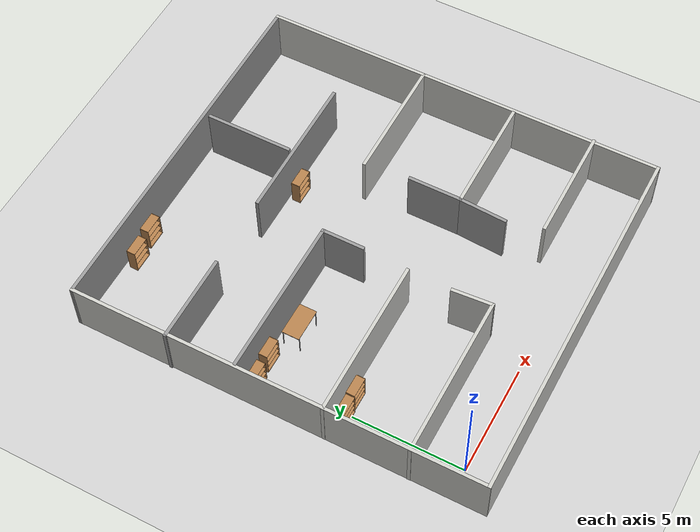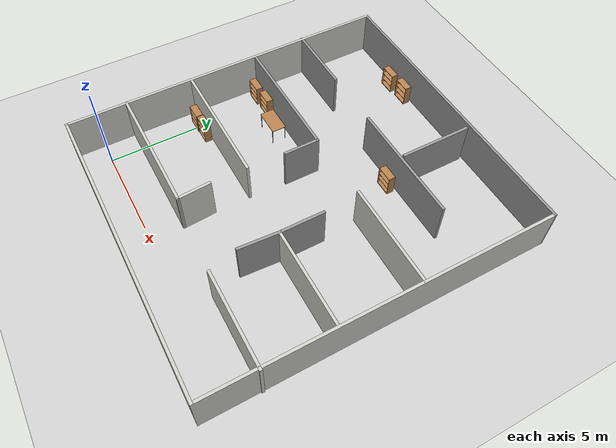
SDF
<sdf version="1.7">
 <world name="default">
  <model name="ground_plane">
   <static>1</static>
   <link name="link">
    <collision name="collision">
     <geometry><plane><normal>0 0 1</normal><size>100 100</size></plane></geometry>
     <surface><friction><ode><mu>100</mu><mu2>50</mu2></ode></friction></surface>
    </collision>
    <visual name="visual">
     <cast_shadows>0</cast_shadows>
     <geometry><plane><normal>0 0 1</normal><size>100 100</size></plane></geometry>
     <material>
      <script><uri>file://media/materials/scripts/gazebo.material</uri><name>Gazebo/Grey</name></script>
     </material>
    </visual>
   </link>
  </model>
  <model name="ee_1">
   <pose>7.01305 7.77711 0 0 -0 0</pose>
   <link name="Wall_0">
    <collision name="Wall_0_Collision">
     <geometry><box><size>16.7607 0.15 2.5</size></box></geometry>
     <pose>0 0 1.25 0 -0 0</pose>
    </collision>
    <visual name="Wall_0_Visual">
     <pose>0 0 1.25 0 -0 0</pose>
     <geometry><box><size>16.7607 0.15 2.5</size></box></geometry>
     <material>
      <script><uri>file://media/materials/scripts/gazebo.material</uri><name>Gazebo/CeilingTiled</name></script>
      <ambient>0.921569 0.807843 0.615686 1</ambient>
     </material>
     <meta><layer>0</layer></meta>
    </visual>
    <pose>0.010352 -9.2685 0 0 -0 0</pose>
   </link>
   <link name="Wall_1">
    <collision name="Wall_1_Collision">
     <geometry><box><size>18.687 0.15 2.5</size></box></geometry>
     <pose>0 0 1.25 0 -0 0</pose>
    </collision>
    <visual name="Wall_1_Visual">
     <pose>0 0 1.25 0 -0 0</pose>
     <geometry><box><size>18.687 0.15 2.5</size></box></geometry>
     <material>
      <script><uri>file://media/materials/scripts/gazebo.material</uri><name>Gazebo/CeilingTiled</name></script>
      <ambient>0.921569 0.807843 0.615686 1</ambient>
     </material>
     <meta><layer>0</layer></meta>
    </visual>
    <pose>8.29685 0 0 0 -0 1.57285</pose>
   </link>
   <link name="Wall_2">
    <collision name="Wall_2_Collision">
     <geometry><box><size>16.761 0.15 2.5</size></box></geometry>
     <pose>0 0 1.25 0 -0 0</pose>
    </collision>
    <visual name="Wall_2_Visual">
     <pose>0 0 1.25 0 -0 0</pose>
     <geometry><box><size>16.761 0.15 2.5</size></box></geometry>
     <material>
      <script><uri>file://media/materials/scripts/gazebo.material</uri><name>Gazebo/Grey</name></script>
      <ambient>1 1 1 1</ambient>
     </material>
     <meta><layer>0</layer></meta>
    </visual>
    <pose>-0.027648 9.2685 0 0 -0 3.14159</pose>
   </link>
   <link name="Wall_21">
    <collision name="Wall_21_Collision">
     <geometry><box><size>7.373 0.15 2.5</size></box></geometry>
     <pose>0 0 1.25 0 -0 0</pose>
    </collision>
    <visual name="Wall_21_Visual">
     <pose>0 0 1.25 0 -0 0</pose>
     <geometry><box><size>7.373 0.15 2.5</size></box></geometry>
     <material>
      <script><uri>file://media/materials/scripts/gazebo.material</uri><name>Gazebo/CeilingTiled</name></script>
      <ambient>0.921569 0.807843 0.615686 1</ambient>
     </material>
     <meta><layer>0</layer></meta>
    </visual>
    <pose>-4.70665 -5.9765 0 0 -0 0</pose>
   </link>
   <link name="Wall_22">
    <collision name="Wall_22_Collision">
     <geometry><box><size>1.87777 0.15 2.5</size></box></geometry>
     <pose>0 0 1.25 0 -0 0</pose>
    </collision>
    <visual name="Wall_22_Visual">
     <pose>0 0 1.25 0 -0 0</pose>
     <geometry><box><size>1.87777 0.15 2.5</size></box></geometry>
     <material>
      <script><uri>file://media/materials/scripts/gazebo.material</uri><name>Gazebo/CeilingTiled</name></script>
      <ambient>0.921569 0.807843 0.615686 1</ambient>
     </material>
     <meta><layer>0</layer></meta>
    </visual>
    <pose>-1.15665 -5.115 0 0 -0 1.64206</pose>
   </link>
   <link name="Wall_24">
    <collision name="Wall_24_Collision">
     <geometry><box><size>7.25 0.15 2.5</size></box></geometry>
     <pose>0 0 1.25 0 -0 0</pose>
    </collision>
    <visual name="Wall_24_Visual">
     <pose>0 0 1.25 0 -0 0</pose>
     <geometry><box><size>7.25 0.15 2.5</size></box></geometry>
     <material>
      <script><uri>file://media/materials/scripts/gazebo.material</uri><name>Gazebo/CeilingTiled</name></script>
      <ambient>0.921569 0.807843 0.615686 1</ambient>
     </material>
     <meta><layer>0</layer></meta>
    </visual>
    <pose>-4.76815 -2.2145 0 0 -0 0</pose>
   </link>
   <link name="Wall_26">
    <collision name="Wall_26_Collision">
     <geometry><box><size>7.25 0.15 2.5</size></box></geometry>
     <pose>0 0 1.25 0 -0 0</pose>
    </collision>
    <visual name="Wall_26_Visual">
     <pose>0 0 1.25 0 -0 0</pose>
     <geometry><box><size>7.25 0.15 2.5</size></box></geometry>
     <material>
      <script><uri>file://media/materials/scripts/gazebo.material</uri><name>Gazebo/Grey</name></script>
      <ambient>1 1 1 1</ambient>
     </material>
     <meta><layer>0</layer></meta>
    </visual>
    <pose>-4.66117 1.74424 0 0 -0 0</pose>
   </link>
   <link name="Wall_27">
    <collision name="Wall_27_Collision">
     <geometry><box><size>2 0.15 2.5</size></box></geometry>
     <pose>0 0 1.25 0 -0 0</pose>
    </collision>
    <visual name="Wall_27_Visual">
     <pose>0 0 1.25 0 -0 0</pose>
     <geometry><box><size>2 0.15 2.5</size></box></geometry>
     <material>
      <script><uri>file://media/materials/scripts/gazebo.material</uri><name>Gazebo/Grey</name></script>
      <ambient>1 1 1 1</ambient>
     </material>
     <meta><layer>0</layer></meta>
    </visual>
    <pose>-1.11117 0.819242 0 0 -0 -1.5708</pose>
   </link>
   <link name="Wall_29">
    <collision name="Wall_29_Collision">
     <geometry><box><size>5.25 0.15 2.5</size></box></geometry>
     <pose>0 0 1.25 0 -0 0</pose>
    </collision>
    <visual name="Wall_29_Visual">
     <pose>0 0 1.25 0 -0 0</pose>
     <geometry><box><size>5.25 0.15 2.5</size></box></geometry>
     <material>
      <script><uri>file://media/materials/scripts/gazebo.material</uri><name>Gazebo/CeilingTiled</name></script>
      <ambient>0.921569 0.807843 0.615686 1</ambient>
     </material>
     <meta><layer>0</layer></meta>
    </visual>
    <pose>5.82485 -6.2815 0 0 -0 3.14159</pose>
   </link>
   <link name="Wall_3">
    <collision name="Wall_3_Collision">
     <geometry><box><size>18.687 0.15 2.5</size></box></geometry>
     <pose>0 0 1.25 0 -0 0</pose>
    </collision>
    <visual name="Wall_3_Visual">
     <pose>0 0 1.25 0 -0 0</pose>
     <geometry><box><size>18.687 0.15 2.5</size></box></geometry>
     <material>
      <script><uri>file://media/materials/scripts/gazebo.material</uri><name>Gazebo/CeilingTiled</name></script>
      <ambient>0.921569 0.807843 0.615686 1</ambient>
     </material>
     <meta><layer>0</layer></meta>
    </visual>
    <pose>-8.31415 0 0 0 -0 -1.56875</pose>
   </link>
   <link name="Wall_31">
    <collision name="Wall_31_Collision">
     <geometry><box><size>5.25 0.15 2.5</size></box></geometry>
     <pose>0 0 1.25 0 -0 0</pose>
    </collision>
    <visual name="Wall_31_Visual">
     <pose>0 0 1.25 0 -0 0</pose>
     <geometry><box><size>5.25 0.15 2.5</size></box></geometry>
     <material>
      <script><uri>file://media/materials/scripts/gazebo.material</uri><name>Gazebo/CeilingTiled</name></script>
      <ambient>0.921569 0.807843 0.615686 1</ambient>
     </material>
     <meta><layer>0</layer></meta>
    </visual>
    <pose>5.6268 -2.56856 0 0 -0 3.14159</pose>
   </link>
   <link name="Wall_32">
    <collision name="Wall_32_Collision">
     <geometry><box><size>2.257 0.15 2.5</size></box></geometry>
     <pose>0 0 1.25 0 -0 0</pose>
    </collision>
    <visual name="Wall_32_Visual">
     <pose>0 0 1.25 0 -0 0</pose>
     <geometry><box><size>2.257 0.15 2.5</size></box></geometry>
     <material>
      <script><uri>file://media/materials/scripts/gazebo.material</uri><name>Gazebo/Grey</name></script>
      <ambient>1 1 1 1</ambient>
     </material>
     <meta><layer>0</layer></meta>
    </visual>
    <pose>2.89214 -3.62025 0 0 -0 -1.62931</pose>
   </link>
   <link name="Wall_34">
    <collision name="Wall_34_Collision">
     <geometry><box><size>5.67802 0.15 2.5</size></box></geometry>
     <pose>0 0 1.25 0 -0 0</pose>
    </collision>
    <visual name="Wall_34_Visual">
     <pose>0 0 1.25 0 -0 0</pose>
     <geometry><box><size>5.67802 0.15 2.5</size></box></geometry>
     <material>
      <script><uri>file://media/materials/scripts/gazebo.material</uri><name>Gazebo/CeilingTiled</name></script>
      <ambient>0.921569 0.807843 0.615686 1</ambient>
     </material>
     <meta><layer>0</layer></meta>
    </visual>
    <pose>5.50385 1.8515 0 0 -0 3.14159</pose>
   </link>
   <link name="Wall_37">
    <collision name="Wall_37_Collision">
     <geometry><box><size>2.49661 0.15 2.5</size></box></geometry>
     <pose>0 0 1.25 0 -0 0</pose>
    </collision>
    <visual name="Wall_37_Visual">
     <pose>0 0 1.25 0 -0 0</pose>
     <geometry><box><size>2.49661 0.15 2.5</size></box></geometry>
     <material>
      <script><uri>file://media/materials/scripts/gazebo.material</uri><name>Gazebo/Grey</name></script>
      <ambient>1 1 1 1</ambient>
     </material>
     <meta><layer>0</layer></meta>
    </visual>
    <pose>2.95366 -1.39525 0 0 -0 1.57086</pose>
   </link>
   <link name="Wall_39">
    <collision name="Wall_39_Collision">
     <geometry><box><size>4 0.15 2.5</size></box></geometry>
     <pose>0 0 1.25 0 -0 0</pose>
    </collision>
    <visual name="Wall_39_Visual">
     <pose>0 0 1.25 0 -0 0</pose>
     <geometry><box><size>4 0.15 2.5</size></box></geometry>
     <material>
      <script><uri>file://media/materials/scripts/gazebo.material</uri><name>Gazebo/Grey</name></script>
      <ambient>1 1 1 1</ambient>
     </material>
     <meta><layer>0</layer></meta>
    </visual>
    <pose>-6.44985 4.83089 0 0 -0 3.14159</pose>
   </link>
   <link name="Wall_44">
    <collision name="Wall_44_Collision">
     <geometry><box><size>6.75 0.15 2.5</size></box></geometry>
     <pose>0 0 1.25 0 -0 0</pose>
    </collision>
    <visual name="Wall_44_Visual">
     <pose>0 0 1.25 0 -0 0</pose>
     <geometry><box><size>6.75 0.15 2.5</size></box></geometry>
     <material>
      <script><uri>file://media/materials/scripts/gazebo.material</uri><name>Gazebo/Grey</name></script>
      <ambient>1 1 1 1</ambient>
     </material>
     <meta><layer>0</layer></meta>
    </visual>
    <pose>2.17764 4.84934 0 0 -0 0</pose>
   </link>
   <link name="Wall_48">
    <collision name="Wall_48_Collision">
     <geometry><box><size>4 0.15 2.5</size></box></geometry>
     <pose>0 0 1.25 0 -0 0</pose>
    </collision>
    <visual name="Wall_48_Visual">
     <pose>0 0 1.25 0 -0 0</pose>
     <geometry><box><size>4 0.15 2.5</size></box></geometry>
     <material>
      <script><uri>file://media/materials/scripts/gazebo.material</uri><name>Gazebo/Grey</name></script>
      <ambient>1 1 1 1</ambient>
     </material>
     <meta><layer>0</layer></meta>
    </visual>
    <pose>1.88593 7.03139 0 0 -0 1.5708</pose>
   </link>
   <static>1</static>
  </model>
  <model name="bookshelf">
   <static>1</static>
   <link name="link">
    <inertial><mass>1</mass></inertial>
    <collision name="back">
     <pose>0 0.005 0.6 0 -0 0</pose>
     <geometry><box><size>0.9 0.01 1.2</size></box></geometry>
    </collision>
    <visual name="visual1">
     <pose>0 0.005 0.6 0 -0 0</pose>
     <geometry><box><size>0.9 0.01 1.2</size></box></geometry>
     <material>
      <script><uri>file://media/materials/scripts/gazebo.material</uri><name>Gazebo/Wood</name></script>
     </material>
    </visual>
    <collision name="left_side">
     <pose>0.45 -0.195 0.6 0 -0 0</pose>
     <geometry><box><size>0.02 0.4 1.2</size></box></geometry>
    </collision>
    <visual name="visual2">
     <pose>0.45 -0.195 0.6 0 -0 0</pose>
     <geometry><box><size>0.02 0.4 1.2</size></box></geometry>
     <material>
      <script><uri>file://media/materials/scripts/gazebo.material</uri><name>Gazebo/Wood</name></script>
     </material>
    </visual>
    <collision name="right_side">
     <pose>-0.45 -0.195 0.6 0 -0 0</pose>
     <geometry><box><size>0.02 0.4 1.2</size></box></geometry>
    </collision>
    <visual name="visual3">
     <pose>-0.45 -0.195 0.6 0 -0 0</pose>
     <geometry><box><size>0.02 0.4 1.2</size></box></geometry>
     <material>
      <script><uri>file://media/materials/scripts/gazebo.material</uri><name>Gazebo/Wood</name></script>
     </material>
    </visual>
    <collision name="bottom">
     <pose>0 -0.195 0.03 0 -0 0</pose>
     <geometry><box><size>0.88 0.4 0.06</size></box></geometry>
    </collision>
    <visual name="visual4">
     <pose>0 -0.195 0.03 0 -0 0</pose>
     <geometry><box><size>0.88 0.4 0.06</size></box></geometry>
     <material>
      <script><uri>file://media/materials/scripts/gazebo.material</uri><name>Gazebo/Wood</name></script>
     </material>
    </visual>
    <collision name="top">
     <pose>0 -0.195 1.19 0 -0 0</pose>
     <geometry><box><size>0.88 0.4 0.02</size></box></geometry>
    </collision>
    <visual name="visual5">
     <pose>0 -0.195 1.19 0 -0 0</pose>
     <geometry><box><size>0.88 0.4 0.02</size></box></geometry>
     <material>
      <script><uri>file://media/materials/scripts/gazebo.material</uri><name>Gazebo/Wood</name></script>
     </material>
    </visual>
    <collision name="low_shelf">
     <pose>0 -0.195 0.43 0 -0 0</pose>
     <geometry><box><size>0.88 0.4 0.02</size></box></geometry>
    </collision>
    <visual name="visual6">
     <pose>0 -0.195 0.43 0 -0 0</pose>
     <geometry><box><size>0.88 0.4 0.02</size></box></geometry>
     <material>
      <script><uri>file://media/materials/scripts/gazebo.material</uri><name>Gazebo/Wood</name></script>
     </material>
    </visual>
    <collision name="high_shelf">
     <pose>0 -0.195 0.8 0 -0 0</pose>
     <geometry><box><size>0.88 0.4 0.02</size></box></geometry>
    </collision>
    <visual name="visual7">
     <pose>0 -0.195 0.8 0 -0 0</pose>
     <geometry><box><size>0.88 0.4 0.02</size></box></geometry>
     <material>
      <script><uri>file://media/materials/scripts/gazebo.material</uri><name>Gazebo/Wood</name></script>
     </material>
    </visual>
   </link>
   <pose>8.64014 12.3736 0 0 -0 0</pose>
  </model>
  <model name="bookshelf_1">
   <static>1</static>
   <link name="link">
    <inertial><mass>1</mass></inertial>
    <collision name="back">
     <pose>0 0.005 0.6 0 -0 0</pose>
     <geometry><box><size>0.9 0.01 1.2</size></box></geometry>
    </collision>
    <visual name="visual1">
     <pose>0 0.005 0.6 0 -0 0</pose>
     <geometry><box><size>0.9 0.01 1.2</size></box></geometry>
     <material>
      <script><uri>file://media/materials/scripts/gazebo.material</uri><name>Gazebo/Wood</name></script>
     </material>
    </visual>
    <collision name="left_side">
     <pose>0.45 -0.195 0.6 0 -0 0</pose>
     <geometry><box><size>0.02 0.4 1.2</size></box></geometry>
    </collision>
    <visual name="visual2">
     <pose>0.45 -0.195 0.6 0 -0 0</pose>
     <geometry><box><size>0.02 0.4 1.2</size></box></geometry>
     <material>
      <script><uri>file://media/materials/scripts/gazebo.material</uri><name>Gazebo/Wood</name></script>
     </material>
    </visual>
    <collision name="right_side">
     <pose>-0.45 -0.195 0.6 0 -0 0</pose>
     <geometry><box><size>0.02 0.4 1.2</size></box></geometry>
    </collision>
    <visual name="visual3">
     <pose>-0.45 -0.195 0.6 0 -0 0</pose>
     <geometry><box><size>0.02 0.4 1.2</size></box></geometry>
     <material>
      <script><uri>file://media/materials/scripts/gazebo.material</uri><name>Gazebo/Wood</name></script>
     </material>
    </visual>
    <collision name="bottom">
     <pose>0 -0.195 0.03 0 -0 0</pose>
     <geometry><box><size>0.88 0.4 0.06</size></box></geometry>
    </collision>
    <visual name="visual4">
     <pose>0 -0.195 0.03 0 -0 0</pose>
     <geometry><box><size>0.88 0.4 0.06</size></box></geometry>
     <material>
      <script><uri>file://media/materials/scripts/gazebo.material</uri><name>Gazebo/Wood</name></script>
     </material>
    </visual>
    <collision name="top">
     <pose>0 -0.195 1.19 0 -0 0</pose>
     <geometry><box><size>0.88 0.4 0.02</size></box></geometry>
    </collision>
    <visual name="visual5">
     <pose>0 -0.195 1.19 0 -0 0</pose>
     <geometry><box><size>0.88 0.4 0.02</size></box></geometry>
     <material>
      <script><uri>file://media/materials/scripts/gazebo.material</uri><name>Gazebo/Wood</name></script>
     </material>
    </visual>
    <collision name="low_shelf">
     <pose>0 -0.195 0.43 0 -0 0</pose>
     <geometry><box><size>0.88 0.4 0.02</size></box></geometry>
    </collision>
    <visual name="visual6">
     <pose>0 -0.195 0.43 0 -0 0</pose>
     <geometry><box><size>0.88 0.4 0.02</size></box></geometry>
     <material>
      <script><uri>file://media/materials/scripts/gazebo.material</uri><name>Gazebo/Wood</name></script>
     </material>
    </visual>
    <collision name="high_shelf">
     <pose>0 -0.195 0.8 0 -0 0</pose>
     <geometry><box><size>0.88 0.4 0.02</size></box></geometry>
    </collision>
    <visual name="visual7">
     <pose>0 -0.195 0.8 0 -0 0</pose>
     <geometry><box><size>0.88 0.4 0.02</size></box></geometry>
     <material>
      <script><uri>file://media/materials/scripts/gazebo.material</uri><name>Gazebo/Wood</name></script>
     </material>
    </visual>
   </link>
   <pose>0.748044 5.44462 0 0 -0 0</pose>
  </model>
  <model name="bookshelf_2">
   <static>1</static>
   <link name="link">
    <inertial><mass>1</mass></inertial>
    <collision name="back">
     <pose>0 0.005 0.6 0 -0 0</pose>
     <geometry><box><size>0.9 0.01 1.2</size></box></geometry>
    </collision>
    <visual name="visual1">
     <pose>0 0.005 0.6 0 -0 0</pose>
     <geometry><box><size>0.9 0.01 1.2</size></box></geometry>
     <material>
      <script><uri>file://media/materials/scripts/gazebo.material</uri><name>Gazebo/Wood</name></script>
     </material>
    </visual>
    <collision name="left_side">
     <pose>0.45 -0.195 0.6 0 -0 0</pose>
     <geometry><box><size>0.02 0.4 1.2</size></box></geometry>
    </collision>
    <visual name="visual2">
     <pose>0.45 -0.195 0.6 0 -0 0</pose>
     <geometry><box><size>0.02 0.4 1.2</size></box></geometry>
     <material>
      <script><uri>file://media/materials/scripts/gazebo.material</uri><name>Gazebo/Wood</name></script>
     </material>
    </visual>
    <collision name="right_side">
     <pose>-0.45 -0.195 0.6 0 -0 0</pose>
     <geometry><box><size>0.02 0.4 1.2</size></box></geometry>
    </collision>
    <visual name="visual3">
     <pose>-0.45 -0.195 0.6 0 -0 0</pose>
     <geometry><box><size>0.02 0.4 1.2</size></box></geometry>
     <material>
      <script><uri>file://media/materials/scripts/gazebo.material</uri><name>Gazebo/Wood</name></script>
     </material>
    </visual>
    <collision name="bottom">
     <pose>0 -0.195 0.03 0 -0 0</pose>
     <geometry><box><size>0.88 0.4 0.06</size></box></geometry>
    </collision>
    <visual name="visual4">
     <pose>0 -0.195 0.03 0 -0 0</pose>
     <geometry><box><size>0.88 0.4 0.06</size></box></geometry>
     <material>
      <script><uri>file://media/materials/scripts/gazebo.material</uri><name>Gazebo/Wood</name></script>
     </material>
    </visual>
    <collision name="top">
     <pose>0 -0.195 1.19 0 -0 0</pose>
     <geometry><box><size>0.88 0.4 0.02</size></box></geometry>
    </collision>
    <visual name="visual5">
     <pose>0 -0.195 1.19 0 -0 0</pose>
     <geometry><box><size>0.88 0.4 0.02</size></box></geometry>
     <material>
      <script><uri>file://media/materials/scripts/gazebo.material</uri><name>Gazebo/Wood</name></script>
     </material>
    </visual>
    <collision name="low_shelf">
     <pose>0 -0.195 0.43 0 -0 0</pose>
     <geometry><box><size>0.88 0.4 0.02</size></box></geometry>
    </collision>
    <visual name="visual6">
     <pose>0 -0.195 0.43 0 -0 0</pose>
     <geometry><box><size>0.88 0.4 0.02</size></box></geometry>
     <material>
      <script><uri>file://media/materials/scripts/gazebo.material</uri><name>Gazebo/Wood</name></script>
     </material>
    </visual>
    <collision name="high_shelf">
     <pose>0 -0.195 0.8 0 -0 0</pose>
     <geometry><box><size>0.88 0.4 0.02</size></box></geometry>
    </collision>
    <visual name="visual7">
     <pose>0 -0.195 0.8 0 -0 0</pose>
     <geometry><box><size>0.88 0.4 0.02</size></box></geometry>
     <material>
      <script><uri>file://media/materials/scripts/gazebo.material</uri><name>Gazebo/Wood</name></script>
     </material>
    </visual>
   </link>
   <pose>3.57686 16.847 0 0 -0 0</pose>
  </model>
  <model name="bookshelf_3">
   <static>1</static>
   <link name="link">
    <inertial><mass>1</mass></inertial>
    <collision name="back">
     <pose>0 0.005 0.6 0 -0 0</pose>
     <geometry><box><size>0.9 0.01 1.2</size></box></geometry>
    </collision>
    <visual name="visual1">
     <pose>0 0.005 0.6 0 -0 0</pose>
     <geometry><box><size>0.9 0.01 1.2</size></box></geometry>
     <material>
      <script><uri>file://media/materials/scripts/gazebo.material</uri><name>Gazebo/Wood</name></script>
     </material>
    </visual>
    <collision name="left_side">
     <pose>0.45 -0.195 0.6 0 -0 0</pose>
     <geometry><box><size>0.02 0.4 1.2</size></box></geometry>
    </collision>
    <visual name="visual2">
     <pose>0.45 -0.195 0.6 0 -0 0</pose>
     <geometry><box><size>0.02 0.4 1.2</size></box></geometry>
     <material>
      <script><uri>file://media/materials/scripts/gazebo.material</uri><name>Gazebo/Wood</name></script>
     </material>
    </visual>
    <collision name="right_side">
     <pose>-0.45 -0.195 0.6 0 -0 0</pose>
     <geometry><box><size>0.02 0.4 1.2</size></box></geometry>
    </collision>
    <visual name="visual3">
     <pose>-0.45 -0.195 0.6 0 -0 0</pose>
     <geometry><box><size>0.02 0.4 1.2</size></box></geometry>
     <material>
      <script><uri>file://media/materials/scripts/gazebo.material</uri><name>Gazebo/Wood</name></script>
     </material>
    </visual>
    <collision name="bottom">
     <pose>0 -0.195 0.03 0 -0 0</pose>
     <geometry><box><size>0.88 0.4 0.06</size></box></geometry>
    </collision>
    <visual name="visual4">
     <pose>0 -0.195 0.03 0 -0 0</pose>
     <geometry><box><size>0.88 0.4 0.06</size></box></geometry>
     <material>
      <script><uri>file://media/materials/scripts/gazebo.material</uri><name>Gazebo/Wood</name></script>
     </material>
    </visual>
    <collision name="top">
     <pose>0 -0.195 1.19 0 -0 0</pose>
     <geometry><box><size>0.88 0.4 0.02</size></box></geometry>
    </collision>
    <visual name="visual5">
     <pose>0 -0.195 1.19 0 -0 0</pose>
     <geometry><box><size>0.88 0.4 0.02</size></box></geometry>
     <material>
      <script><uri>file://media/materials/scripts/gazebo.material</uri><name>Gazebo/Wood</name></script>
     </material>
    </visual>
    <collision name="low_shelf">
     <pose>0 -0.195 0.43 0 -0 0</pose>
     <geometry><box><size>0.88 0.4 0.02</size></box></geometry>
    </collision>
    <visual name="visual6">
     <pose>0 -0.195 0.43 0 -0 0</pose>
     <geometry><box><size>0.88 0.4 0.02</size></box></geometry>
     <material>
      <script><uri>file://media/materials/scripts/gazebo.material</uri><name>Gazebo/Wood</name></script>
     </material>
    </visual>
    <collision name="high_shelf">
     <pose>0 -0.195 0.8 0 -0 0</pose>
     <geometry><box><size>0.88 0.4 0.02</size></box></geometry>
    </collision>
    <visual name="visual7">
     <pose>0 -0.195 0.8 0 -0 0</pose>
     <geometry><box><size>0.88 0.4 0.02</size></box></geometry>
     <material>
      <script><uri>file://media/materials/scripts/gazebo.material</uri><name>Gazebo/Wood</name></script>
     </material>
    </visual>
   </link>
   <pose>2.35825 16.7303 0 0 -0 0</pose>
  </model>
  <model name="bookshelf_4">
   <static>1</static>
   <link name="link">
    <inertial><mass>1</mass></inertial>
    <collision name="back">
     <pose>0 0.005 0.6 0 -0 0</pose>
     <geometry><box><size>0.9 0.01 1.2</size></box></geometry>
    </collision>
    <visual name="visual1">
     <pose>0 0.005 0.6 0 -0 0</pose>
     <geometry><box><size>0.9 0.01 1.2</size></box></geometry>
     <material>
      <script><uri>file://media/materials/scripts/gazebo.material</uri><name>Gazebo/Wood</name></script>
     </material>
    </visual>
    <collision name="left_side">
     <pose>0.45 -0.195 0.6 0 -0 0</pose>
     <geometry><box><size>0.02 0.4 1.2</size></box></geometry>
    </collision>
    <visual name="visual2">
     <pose>0.45 -0.195 0.6 0 -0 0</pose>
     <geometry><box><size>0.02 0.4 1.2</size></box></geometry>
     <material>
      <script><uri>file://media/materials/scripts/gazebo.material</uri><name>Gazebo/Wood</name></script>
     </material>
    </visual>
    <collision name="right_side">
     <pose>-0.45 -0.195 0.6 0 -0 0</pose>
     <geometry><box><size>0.02 0.4 1.2</size></box></geometry>
    </collision>
    <visual name="visual3">
     <pose>-0.45 -0.195 0.6 0 -0 0</pose>
     <geometry><box><size>0.02 0.4 1.2</size></box></geometry>
     <material>
      <script><uri>file://media/materials/scripts/gazebo.material</uri><name>Gazebo/Wood</name></script>
     </material>
    </visual>
    <collision name="bottom">
     <pose>0 -0.195 0.03 0 -0 0</pose>
     <geometry><box><size>0.88 0.4 0.06</size></box></geometry>
    </collision>
    <visual name="visual4">
     <pose>0 -0.195 0.03 0 -0 0</pose>
     <geometry><box><size>0.88 0.4 0.06</size></box></geometry>
     <material>
      <script><uri>file://media/materials/scripts/gazebo.material</uri><name>Gazebo/Wood</name></script>
     </material>
    </visual>
    <collision name="top">
     <pose>0 -0.195 1.19 0 -0 0</pose>
     <geometry><box><size>0.88 0.4 0.02</size></box></geometry>
    </collision>
    <visual name="visual5">
     <pose>0 -0.195 1.19 0 -0 0</pose>
     <geometry><box><size>0.88 0.4 0.02</size></box></geometry>
     <material>
      <script><uri>file://media/materials/scripts/gazebo.material</uri><name>Gazebo/Wood</name></script>
     </material>
    </visual>
    <collision name="low_shelf">
     <pose>0 -0.195 0.43 0 -0 0</pose>
     <geometry><box><size>0.88 0.4 0.02</size></box></geometry>
    </collision>
    <visual name="visual6">
     <pose>0 -0.195 0.43 0 -0 0</pose>
     <geometry><box><size>0.88 0.4 0.02</size></box></geometry>
     <material>
      <script><uri>file://media/materials/scripts/gazebo.material</uri><name>Gazebo/Wood</name></script>
     </material>
    </visual>
    <collision name="high_shelf">
     <pose>0 -0.195 0.8 0 -0 0</pose>
     <geometry><box><size>0.88 0.4 0.02</size></box></geometry>
    </collision>
    <visual name="visual7">
     <pose>0 -0.195 0.8 0 -0 0</pose>
     <geometry><box><size>0.88 0.4 0.02</size></box></geometry>
     <material>
      <script><uri>file://media/materials/scripts/gazebo.material</uri><name>Gazebo/Wood</name></script>
     </material>
    </visual>
   </link>
   <pose>-0.497717 9.2956 0 0 -0 0</pose>
  </model>
  <model name="bookshelf_5">
   <static>1</static>
   <link name="link">
    <inertial><mass>1</mass></inertial>
    <collision name="back">
     <pose>0 0.005 0.6 0 -0 0</pose>
     <geometry><box><size>0.9 0.01 1.2</size></box></geometry>
    </collision>
    <visual name="visual1">
     <pose>0 0.005 0.6 0 -0 0</pose>
     <geometry><box><size>0.9 0.01 1.2</size></box></geometry>
     <material>
      <script><uri>file://media/materials/scripts/gazebo.material</uri><name>Gazebo/Wood</name></script>
     </material>
    </visual>
    <collision name="left_side">
     <pose>0.45 -0.195 0.6 0 -0 0</pose>
     <geometry><box><size>0.02 0.4 1.2</size></box></geometry>
    </collision>
    <visual name="visual2">
     <pose>0.45 -0.195 0.6 0 -0 0</pose>
     <geometry><box><size>0.02 0.4 1.2</size></box></geometry>
     <material>
      <script><uri>file://media/materials/scripts/gazebo.material</uri><name>Gazebo/Wood</name></script>
     </material>
    </visual>
    <collision name="right_side">
     <pose>-0.45 -0.195 0.6 0 -0 0</pose>
     <geometry><box><size>0.02 0.4 1.2</size></box></geometry>
    </collision>
    <visual name="visual3">
     <pose>-0.45 -0.195 0.6 0 -0 0</pose>
     <geometry><box><size>0.02 0.4 1.2</size></box></geometry>
     <material>
      <script><uri>file://media/materials/scripts/gazebo.material</uri><name>Gazebo/Wood</name></script>
     </material>
    </visual>
    <collision name="bottom">
     <pose>0 -0.195 0.03 0 -0 0</pose>
     <geometry><box><size>0.88 0.4 0.06</size></box></geometry>
    </collision>
    <visual name="visual4">
     <pose>0 -0.195 0.03 0 -0 0</pose>
     <geometry><box><size>0.88 0.4 0.06</size></box></geometry>
     <material>
      <script><uri>file://media/materials/scripts/gazebo.material</uri><name>Gazebo/Wood</name></script>
     </material>
    </visual>
    <collision name="top">
     <pose>0 -0.195 1.19 0 -0 0</pose>
     <geometry><box><size>0.88 0.4 0.02</size></box></geometry>
    </collision>
    <visual name="visual5">
     <pose>0 -0.195 1.19 0 -0 0</pose>
     <geometry><box><size>0.88 0.4 0.02</size></box></geometry>
     <material>
      <script><uri>file://media/materials/scripts/gazebo.material</uri><name>Gazebo/Wood</name></script>
     </material>
    </visual>
    <collision name="low_shelf">
     <pose>0 -0.195 0.43 0 -0 0</pose>
     <geometry><box><size>0.88 0.4 0.02</size></box></geometry>
    </collision>
    <visual name="visual6">
     <pose>0 -0.195 0.43 0 -0 0</pose>
     <geometry><box><size>0.88 0.4 0.02</size></box></geometry>
     <material>
      <script><uri>file://media/materials/scripts/gazebo.material</uri><name>Gazebo/Wood</name></script>
     </material>
    </visual>
    <collision name="high_shelf">
     <pose>0 -0.195 0.8 0 -0 0</pose>
     <geometry><box><size>0.88 0.4 0.02</size></box></geometry>
    </collision>
    <visual name="visual7">
     <pose>0 -0.195 0.8 0 -0 0</pose>
     <geometry><box><size>0.88 0.4 0.02</size></box></geometry>
     <material>
      <script><uri>file://media/materials/scripts/gazebo.material</uri><name>Gazebo/Wood</name></script>
     </material>
    </visual>
   </link>
   <pose>0.662005 9.36987 0 0 -0 0</pose>
  </model>
  <model name="bookshelf_12">
   <static>1</static>
   <link name="link">
    <inertial><mass>1</mass></inertial>
    <collision name="back">
     <pose>0 0.005 0.6 0 -0 0</pose>
     <geometry><box><size>0.9 0.01 1.2</size></box></geometry>
    </collision>
    <visual name="visual1">
     <pose>0 0.005 0.6 0 -0 0</pose>
     <geometry><box><size>0.9 0.01 1.2</size></box></geometry>
     <material>
      <script><uri>file://media/materials/scripts/gazebo.material</uri><name>Gazebo/Wood</name></script>
     </material>
    </visual>
    <collision name="left_side">
     <pose>0.45 -0.195 0.6 0 -0 0</pose>
     <geometry><box><size>0.02 0.4 1.2</size></box></geometry>
    </collision>
    <visual name="visual2">
     <pose>0.45 -0.195 0.6 0 -0 0</pose>
     <geometry><box><size>0.02 0.4 1.2</size></box></geometry>
     <material>
      <script><uri>file://media/materials/scripts/gazebo.material</uri><name>Gazebo/Wood</name></script>
     </material>
    </visual>
    <collision name="right_side">
     <pose>-0.45 -0.195 0.6 0 -0 0</pose>
     <geometry><box><size>0.02 0.4 1.2</size></box></geometry>
    </collision>
    <visual name="visual3">
     <pose>-0.45 -0.195 0.6 0 -0 0</pose>
     <geometry><box><size>0.02 0.4 1.2</size></box></geometry>
     <material>
      <script><uri>file://media/materials/scripts/gazebo.material</uri><name>Gazebo/Wood</name></script>
     </material>
    </visual>
    <collision name="bottom">
     <pose>0 -0.195 0.03 0 -0 0</pose>
     <geometry><box><size>0.88 0.4 0.06</size></box></geometry>
    </collision>
    <visual name="visual4">
     <pose>0 -0.195 0.03 0 -0 0</pose>
     <geometry><box><size>0.88 0.4 0.06</size></box></geometry>
     <material>
      <script><uri>file://media/materials/scripts/gazebo.material</uri><name>Gazebo/Wood</name></script>
     </material>
    </visual>
    <collision name="top">
     <pose>0 -0.195 1.19 0 -0 0</pose>
     <geometry><box><size>0.88 0.4 0.02</size></box></geometry>
    </collision>
    <visual name="visual5">
     <pose>0 -0.195 1.19 0 -0 0</pose>
     <geometry><box><size>0.88 0.4 0.02</size></box></geometry>
     <material>
      <script><uri>file://media/materials/scripts/gazebo.material</uri><name>Gazebo/Wood</name></script>
     </material>
    </visual>
    <collision name="low_shelf">
     <pose>0 -0.195 0.43 0 -0 0</pose>
     <geometry><box><size>0.88 0.4 0.02</size></box></geometry>
    </collision>
    <visual name="visual6">
     <pose>0 -0.195 0.43 0 -0 0</pose>
     <geometry><box><size>0.88 0.4 0.02</size></box></geometry>
     <material>
      <script><uri>file://media/materials/scripts/gazebo.material</uri><name>Gazebo/Wood</name></script>
     </material>
    </visual>
    <collision name="high_shelf">
     <pose>0 -0.195 0.8 0 -0 0</pose>
     <geometry><box><size>0.88 0.4 0.02</size></box></geometry>
    </collision>
    <visual name="visual7">
     <pose>0 -0.195 0.8 0 -0 0</pose>
     <geometry><box><size>0.88 0.4 0.02</size></box></geometry>
     <material>
      <script><uri>file://media/materials/scripts/gazebo.material</uri><name>Gazebo/Wood</name></script>
     </material>
    </visual>
   </link>
   <pose>-0.190196 5.41075 0 0 -0 0</pose>
  </model>
  <model name="table_3">
   <static>1</static>
   <link name="link">
    <collision name="surface">
     <pose>0 0 1 0 -0 0</pose>
     <geometry><box><size>1.5 0.8 0.03</size></box></geometry>
     <surface><friction><ode><mu>0.6</mu><mu2>0.6</mu2></ode></friction></surface>
    </collision>
    <visual name="visual1">
     <pose>0 0 1 0 -0 0</pose>
     <geometry><box><size>1.5 0.8 0.03</size></box></geometry>
     <material>
      <script><uri>file://media/materials/scripts/gazebo.material</uri><name>Gazebo/Wood</name></script>
     </material>
    </visual>
    <collision name="front_left_leg">
     <pose>0.68 0.38 0.5 0 -0 0</pose>
     <geometry><cylinder><radius>0.02</radius><length>1</length></cylinder></geometry>
    </collision>
    <visual name="front_left_leg">
     <pose>0.68 0.38 0.5 0 -0 0</pose>
     <geometry><cylinder><radius>0.02</radius><length>1</length></cylinder></geometry>
     <material>
      <script><uri>file://media/materials/scripts/gazebo.material</uri><name>Gazebo/Grey</name></script>
     </material>
    </visual>
    <collision name="front_right_leg">
     <pose>0.68 -0.38 0.5 0 -0 0</pose>
     <geometry><cylinder><radius>0.02</radius><length>1</length></cylinder></geometry>
    </collision>
    <visual name="front_right_leg">
     <pose>0.68 -0.38 0.5 0 -0 0</pose>
     <geometry><cylinder><radius>0.02</radius><length>1</length></cylinder></geometry>
     <material>
      <script><uri>file://media/materials/scripts/gazebo.material</uri><name>Gazebo/Grey</name></script>
     </material>
    </visual>
    <collision name="back_right_leg">
     <pose>-0.68 -0.38 0.5 0 -0 0</pose>
     <geometry><cylinder><radius>0.02</radius><length>1</length></cylinder></geometry>
    </collision>
    <visual name="back_right_leg">
     <pose>-0.68 -0.38 0.5 0 -0 0</pose>
     <geometry><cylinder><radius>0.02</radius><length>1</length></cylinder></geometry>
     <material>
      <script><uri>file://media/materials/scripts/gazebo.material</uri><name>Gazebo/Grey</name></script>
     </material>
    </visual>
    <collision name="back_left_leg">
     <pose>-0.68 0.38 0.5 0 -0 0</pose>
     <geometry><cylinder><radius>0.02</radius><length>1</length></cylinder></geometry>
    </collision>
    <visual name="back_left_leg">
     <pose>-0.68 0.38 0.5 0 -0 0</pose>
     <geometry><cylinder><radius>0.02</radius><length>1</length></cylinder></geometry>
     <material>
      <script><uri>file://media/materials/scripts/gazebo.material</uri><name>Gazebo/Grey</name></script>
     </material>
    </visual>
   </link>
   <pose>2.37321 8.72176 0 0 -0 0</pose>
  </model>
 </world>
</sdf>
